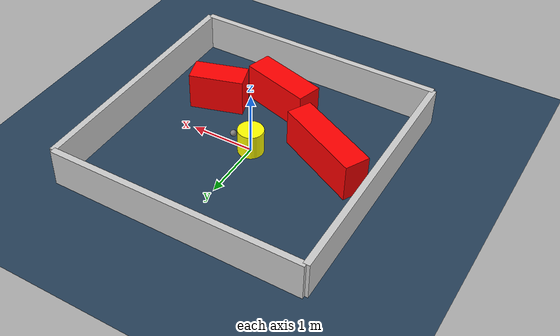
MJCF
<?xml version="1.0" ?>
<mujoco model="generated_environment">
  <option timestep="0.01" integrator="RK4" cone="elliptic"/>
  <default>
    <geom density="1"/>
  </default>
  <asset>
    <texture builtin="gradient" height="3072" rgb1="0.3 0.5 0.7" rgb2="0 0 0" type="skybox" width="512"/>
    <texture builtin="checker" height="300" mark="edge" markrgb="0.8 0.8 0.8" name="groundplane" rgb1="0.2 0.3 0.4" rgb2="0.1 0.2 0.3" type="2d" width="300"/>
    <material name="groundplane" reflectance="0.2" texrepeat="5 5" texture="groundplane" texuniform="true"/>
    <material name="robot" rgba="0.0 1.0 0.0 1"/>
  </asset>
  <worldbody>
    <light dir="0 0 -1" directional="true" pos="0 0 1.5"/>
    <geom condim="4" friction="1.0 0.005 0.001" material="groundplane" name="floor" size="0 0 0.05" type="plane"/>
    <body name="walls">
      <geom name="wall_1" condim="4" pos="-2.0 0.0 0.3" rgba="0.800000011920929 0.800000011920929 0.800000011920929 1.0" size="0.05 2.0 0.3" type="box"/>
      <geom name="wall_2" condim="4" pos="2.0 0.0 0.3" rgba="0.800000011920929 0.800000011920929 0.800000011920929 1.0" size="0.05 2.0 0.3" type="box"/>
      <geom name="wall_3" condim="4" pos="0.0 -2.0 0.3" rgba="0.800000011920929 0.800000011920929 0.800000011920929 1.0" size="2.0 0.05 0.3" type="box"/>
      <geom name="wall_4" condim="4" pos="0.0 2.0 0.3" rgba="0.800000011920929 0.800000011920929 0.800000011920929 1.0" size="2.0 0.05 0.3" type="box"/>
    </body>
    <body name="robot">
      <joint name="joint_x" type="slide" pos="0 0 0" axis="1 0 0"/>
      <joint name="joint_y" type="slide" pos="0 0 0" axis="0 1 0"/>
      <geom name="robot" type="sphere" pos="0.3 0.0 0.2" size="0.05" mass="5." friction="1.0 0.005 0.0001" condim="4" rgba="0.5 0.5 0.5 1.0"/>
      <site name="sensor_ball"/>
    </body>
    <body name="obstacle_movable_1">
      <geom name="obstacle_movable_1" condim="4" pos="0.0 0.0 0.2" euler="0 0 0.0" friction="1.0 0.005 0.001" rgba="1.0 1.0 0.0 1.0" size="0.2 0.2 0.0" type="cylinder" mass="0.1"/>
      <joint type="free"/>
    </body>
    <body name="obstacle_2_static">
      <geom name="obstacle_2_static" condim="4" pos="-1.1012442487580725 -0.2769766420635018 0.3" euler="0 0 332.702726135461" friction="1.0 0.005 0.001" rgba="1 0 0 1" size="0.7187498021724299 0.2 0.3" type="box"/>
    </body>
    <body name="obstacle_3_static">
      <geom name="obstacle_3_static" condim="4" pos="0.10000321140962964 -1.1313174992060446 0.3" euler="0 0 163.70243209540237" friction="1.0 0.005 0.001" rgba="1 0 0 1" size="0.5653202690477568 0.2 0.3" type="box"/>
    </body>
    <body name="obstacle_4_static">
      <geom name="obstacle_4_static" condim="4" pos="1.010108107748312 -0.7144263183713742 0.3" euler="0 0 17.023228201963818" friction="1.0 0.005 0.001" rgba="1 0 0 1" size="0.4241243908661396 0.2 0.3" type="box"/>
    </body>
  </worldbody>
  <actuator>
    <motor name="actuator_x" joint="joint_x" gear="1" ctrlrange="-1 1"/>
    <motor name="actuator_y" joint="joint_y" gear="1" ctrlrange="-1 1"/>
  </actuator>
</mujoco>
